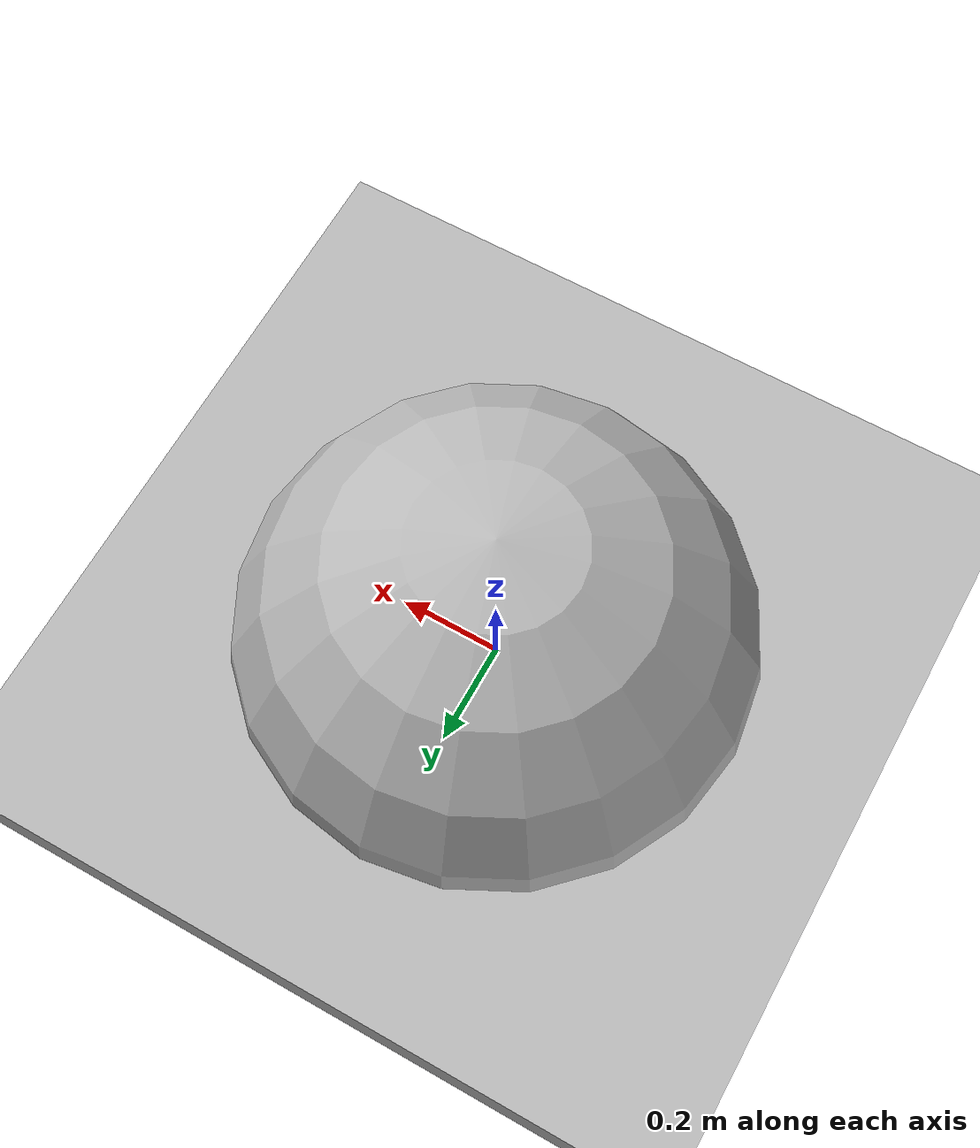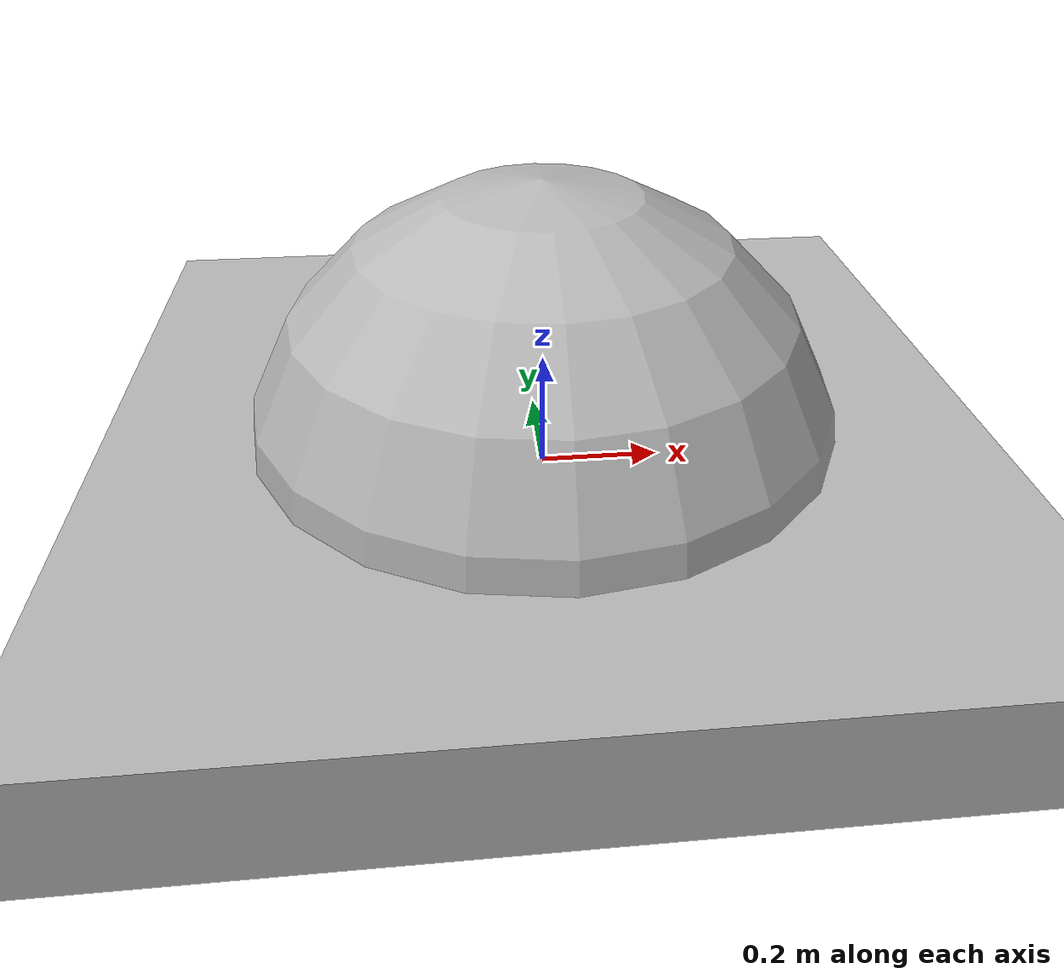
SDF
<sdf version='1.6'>
  <world name='default'>
    <light name='sun' type='directional'>
      <cast_shadows>1</cast_shadows>
      <pose frame=''>0 0 10 0 0 0</pose>
      <diffuse>0.8 0.8 0.8 1</diffuse>
      <specular>0.2 0.2 0.2 1</specular>
      <attenuation>
        <range>1000</range>
        <constant>0.9</constant>
        <linear>0.01</linear>
        <quadratic>0.001</quadratic>
      </attenuation>
      <direction>-0.5 0.1 -0.9</direction>
    </light>

    <scene>
        <ambient>0.3 0.2 0.3 1</ambient>
        <background>0.3 0.3 0.3 1</background>
        <sky>
          <clouds>
            <speed>12</speed>
          </clouds>
        </sky>
    </scene>

    <include>
        <uri>model://concrete_floor</uri>
    </include>

    <include>
        <uri>model://concrete_wall</uri>
        <pose>-15 0 0 0 1.570795 0.0</pose>
    </include>

    <include>
        <uri>model://spheric_target_setup_2</uri>
    </include>

    </world>
</sdf>

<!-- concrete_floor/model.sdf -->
<sdf version="1.4">
  <model name="concrete_floor">
    <static>true</static>
    <link name="link">
      <collision name="collision">
        <geometry>
          <plane>
            <normal>0 0 1</normal>
            <size>200 200</size>
          </plane>
        </geometry>
      </collision>
      <visual name="visual">
        <cast_shadows>false</cast_shadows>
	       <geometry>
          <plane>
            <normal>0 0 1</normal>
            <size>200 200</size>
          </plane>
        </geometry>
        <material>
          <script>
            <uri>model://materials/scripts/concrete.material</uri>
            <uri>model://materials/textures</uri>
            <name>vrc/concrete</name>
          </script>
        </material>
      </visual>
    </link>
  </model>
</sdf>

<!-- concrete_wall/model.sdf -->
<sdf version="1.4">
  <model name="concrete_wall">
    <static>true</static>
    <link name="link">
      <collision name="collision">
        <geometry>
          <plane>
            <normal>1 0 0</normal>
            <size>200 200</size>
          </plane>
        </geometry>
      </collision>
      <visual name="visual">
        <cast_shadows>false</cast_shadows>
	       <geometry>
          <plane>
            <normal>1 0 0</normal>
            <size>200 200</size>
          </plane>
        </geometry>
        <material>
          <script>
            <uri>model://materials/scripts/concrete.material</uri>
            <uri>model://materials/textures</uri>
            <name>vrc/concrete</name>
          </script>
        </material>
      </visual>
    </link>
  </model>
</sdf>

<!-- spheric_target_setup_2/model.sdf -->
<sdf version="1.4">
  <model name="spheric_target_setup_2">
    <static>true</static>
    <link name="link">
      <collision name="collision">
        <geometry>
          <sphere>
            <radius>0.5 0.5</radius>
          </sphere>
        </geometry>
      </collision>
      <visual name="visual">
        <cast_shadows>false</cast_shadows>
	       <geometry>
          <sphere>
            <radius>0.5 0.5</radius>
          </sphere>
        </geometry>
        <material>
          <script>
            <uri>model://materials/scripts/polyspan.material</uri>
            <uri>model://materials/textures</uri>
            <name>vrc/polyspan</name>
          </script>
        </material>
      </visual>
    </link>
    <!-- reference to your plugin -->
    <plugin name="animated_sphere_setup_2" filename="libanimated_sphere_setup_2.so"/>
  </model>
</sdf>
